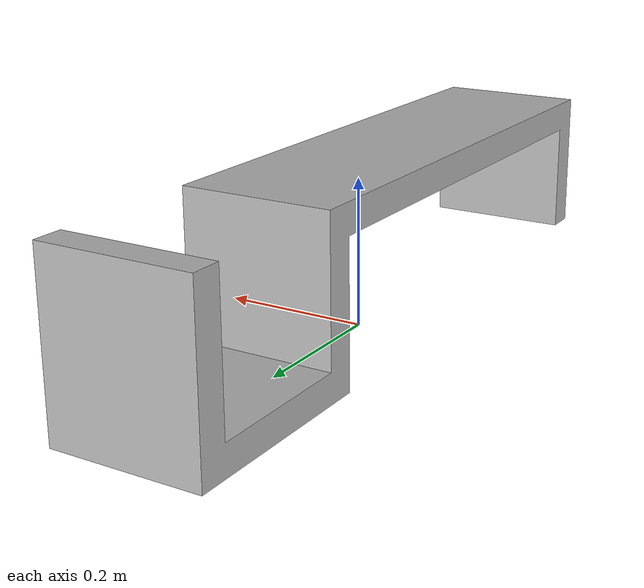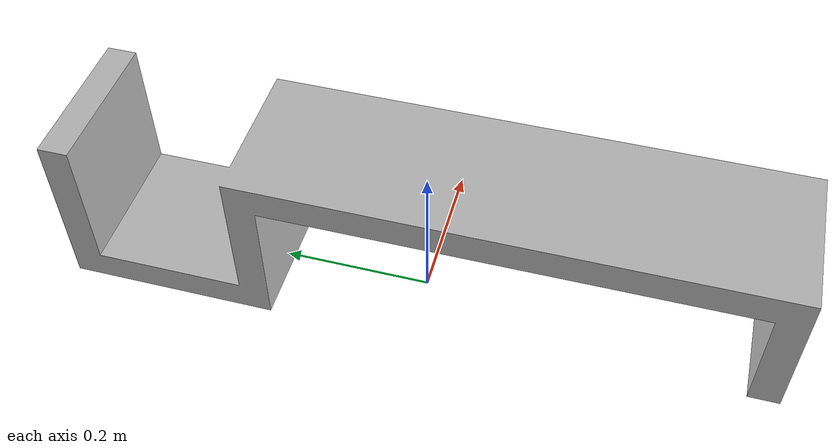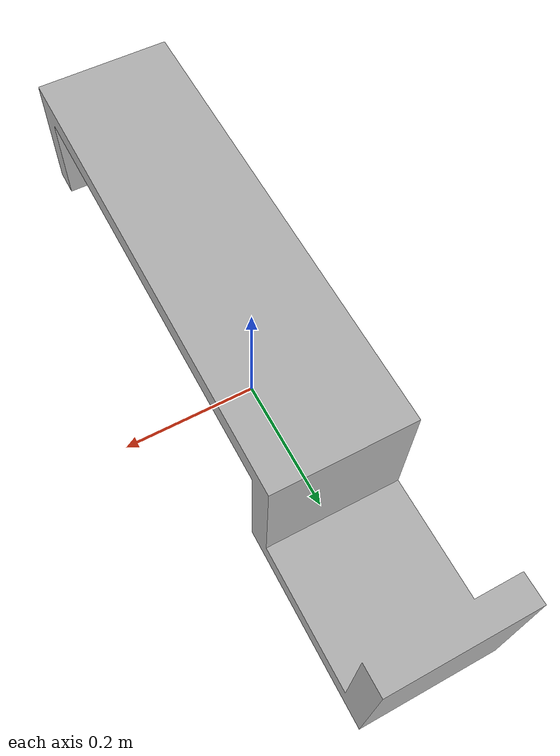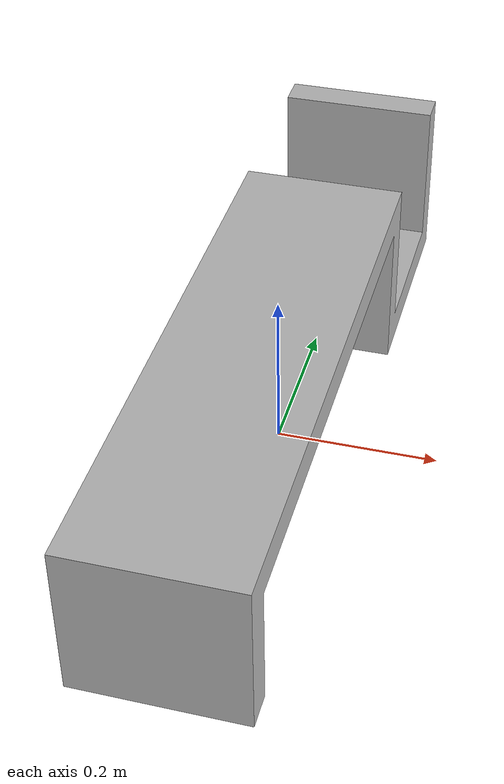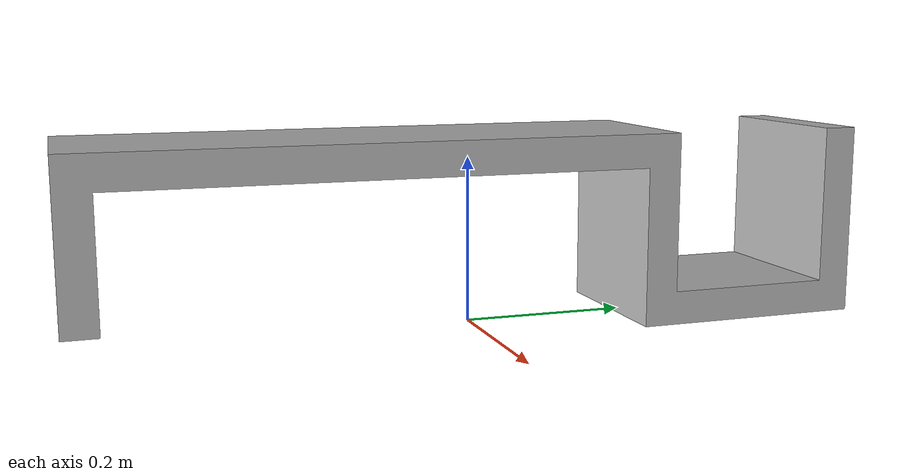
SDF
<?xml version='1.0'?>
<sdf version='1.4'>
  <model name='493'>
    <pose>0 0 0 0 0 0</pose>
    <static>true</static>
    <link name='link'>
      <collision name='collision'>
        <pose>0 0 0 0 0 0</pose>
        <geometry>
          <box>
            <size>0.2 0.94 2</size>
          </box>
        </geometry>
      </collision>
      <visual name='visual'>
        <pose>0 0 0 0 0 0</pose>
        <geometry>
          <mesh><uri>model://493/493.dae</uri></mesh>
        </geometry>
      </visual>
    </link>
  </model>
</sdf>
